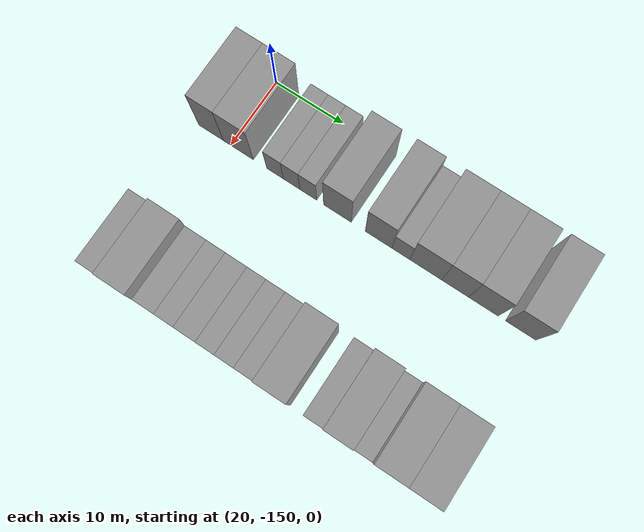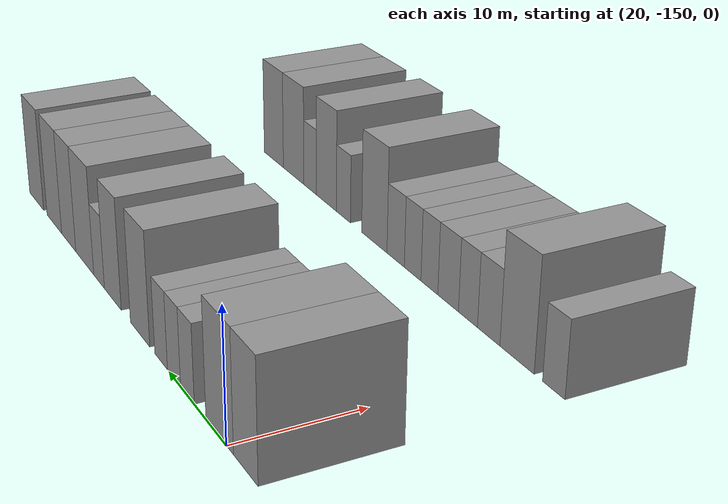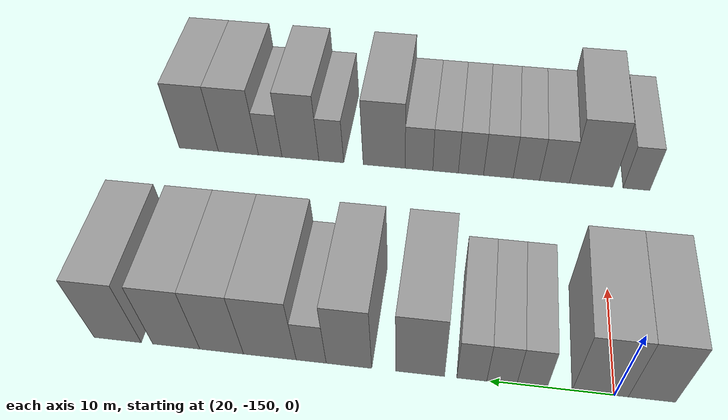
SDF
<sdf version="1.6">
 <world name="default">
  <model name="building_14">
   <static>1</static>
   <pose>25.0000 -152.9464 0 0.000000 0.000000 0.000000</pose>
   <link name="link">
    <pose>0 0 4.50 0 0 0</pose>
    <collision name="collision"><geometry><box><size>10.0000 3.7243 9.0000</size></box></geometry></collision>
    <visual name="visual">
     <cast_shadows>0</cast_shadows>
     <geometry><box><size>10.0000 3.7243 9.0000</size></box></geometry>
     <material>
      <script>
       <uri>model://grey_wall/materials/scripts</uri>
       <uri>model://grey_wall/materials/textures</uri>
       <name>vrc/grey_wall</name>
      </script>
     </material>
    </visual>
   </link>
  </model>
  <model name="building_15">
   <static>1</static>
   <pose>25.0000 -148.8476 0 0.000000 0.000000 0.000000</pose>
   <link name="link">
    <pose>0 0 4.50 0 0 0</pose>
    <collision name="collision"><geometry><box><size>10.0000 4.4733 9.0000</size></box></geometry></collision>
    <visual name="visual">
     <cast_shadows>0</cast_shadows>
     <geometry><box><size>10.0000 4.4733 9.0000</size></box></geometry>
     <material>
      <script>
       <uri>model://grey_wall/materials/scripts</uri>
       <uri>model://grey_wall/materials/textures</uri>
       <name>vrc/grey_wall</name>
      </script>
     </material>
    </visual>
   </link>
  </model>
  <model name="building_16">
   <static>1</static>
   <pose>25.0000 -143.3843 0 0.000000 0.000000 0.000000</pose>
   <link name="link">
    <pose>0 0 3.00 0 0 0</pose>
    <collision name="collision"><geometry><box><size>10.0000 2.4534 6.0000</size></box></geometry></collision>
    <visual name="visual">
     <cast_shadows>0</cast_shadows>
     <geometry><box><size>10.0000 2.4534 6.0000</size></box></geometry>
     <material>
      <script>
       <uri>model://grey_wall/materials/scripts</uri>
       <uri>model://grey_wall/materials/textures</uri>
       <name>vrc/grey_wall</name>
      </script>
     </material>
    </visual>
   </link>
  </model>
  <model name="building_17">
   <static>1</static>
   <pose>25.0000 -140.9417 0 0.000000 0.000000 0.000000</pose>
   <link name="link">
    <pose>0 0 3.00 0 0 0</pose>
    <collision name="collision"><geometry><box><size>10.0000 2.4318 6.0000</size></box></geometry></collision>
    <visual name="visual">
     <cast_shadows>0</cast_shadows>
     <geometry><box><size>10.0000 2.4318 6.0000</size></box></geometry>
     <material>
      <script>
       <uri>model://grey_wall/materials/scripts</uri>
       <uri>model://grey_wall/materials/textures</uri>
       <name>vrc/grey_wall</name>
      </script>
     </material>
    </visual>
   </link>
  </model>
  <model name="building_18">
   <static>1</static>
   <pose>25.0000 -138.5001 0 0.000000 0.000000 0.000000</pose>
   <link name="link">
    <pose>0 0 3.00 0 0 0</pose>
    <collision name="collision"><geometry><box><size>10.0000 2.4512 6.0000</size></box></geometry></collision>
    <visual name="visual">
     <cast_shadows>0</cast_shadows>
     <geometry><box><size>10.0000 2.4512 6.0000</size></box></geometry>
     <material>
      <script>
       <uri>model://grey_wall/materials/scripts</uri>
       <uri>model://grey_wall/materials/textures</uri>
       <name>vrc/grey_wall</name>
      </script>
     </material>
    </visual>
   </link>
  </model>
  <model name="building_19">
   <static>1</static>
   <pose>25.0000 -134.2684 0 0.000000 0.000000 0.000000</pose>
   <link name="link">
    <pose>0 0 4.50 0 0 0</pose>
    <collision name="collision"><geometry><box><size>10.0000 4.0122 9.0000</size></box></geometry></collision>
    <visual name="visual">
     <cast_shadows>0</cast_shadows>
     <geometry><box><size>10.0000 4.0122 9.0000</size></box></geometry>
     <material>
      <script>
       <uri>model://grey_wall/materials/scripts</uri>
       <uri>model://grey_wall/materials/textures</uri>
       <name>vrc/grey_wall</name>
      </script>
     </material>
    </visual>
   </link>
  </model>
  <model name="building_20">
   <static>1</static>
   <pose>25.0000 -128.3569 0 0.000000 0.000000 0.000000</pose>
   <link name="link">
    <pose>0 0 4.50 0 0 0</pose>
    <collision name="collision"><geometry><box><size>10.0000 3.8109 9.0000</size></box></geometry></collision>
    <visual name="visual">
     <cast_shadows>0</cast_shadows>
     <geometry><box><size>10.0000 3.8109 9.0000</size></box></geometry>
     <material>
      <script>
       <uri>model://grey_wall/materials/scripts</uri>
       <uri>model://grey_wall/materials/textures</uri>
       <name>vrc/grey_wall</name>
      </script>
     </material>
    </visual>
   </link>
  </model>
  <model name="building_21">
   <static>1</static>
   <pose>25.0000 -125.1883 0 0.000000 0.000000 0.000000</pose>
   <link name="link">
    <pose>0 0 3.00 0 0 0</pose>
    <collision name="collision"><geometry><box><size>10.0000 2.5262 6.0000</size></box></geometry></collision>
    <visual name="visual">
     <cast_shadows>0</cast_shadows>
     <geometry><box><size>10.0000 2.5262 6.0000</size></box></geometry>
     <material>
      <script>
       <uri>model://grey_wall/materials/scripts</uri>
       <uri>model://grey_wall/materials/textures</uri>
       <name>vrc/grey_wall</name>
      </script>
     </material>
    </visual>
   </link>
  </model>
  <model name="building_22">
   <static>1</static>
   <pose>25.0000 -121.6837 0 0.000000 0.000000 0.000000</pose>
   <link name="link">
    <pose>0 0 4.50 0 0 0</pose>
    <collision name="collision"><geometry><box><size>10.0000 4.4832 9.0000</size></box></geometry></collision>
    <visual name="visual">
     <cast_shadows>0</cast_shadows>
     <geometry><box><size>10.0000 4.4832 9.0000</size></box></geometry>
     <material>
      <script>
       <uri>model://grey_wall/materials/scripts</uri>
       <uri>model://grey_wall/materials/textures</uri>
       <name>vrc/grey_wall</name>
      </script>
     </material>
    </visual>
   </link>
  </model>
  <model name="building_23">
   <static>1</static>
   <pose>25.0000 -117.5654 0 0.000000 0.000000 0.000000</pose>
   <link name="link">
    <pose>0 0 4.50 0 0 0</pose>
    <collision name="collision"><geometry><box><size>10.0000 3.7533 9.0000</size></box></geometry></collision>
    <visual name="visual">
     <cast_shadows>0</cast_shadows>
     <geometry><box><size>10.0000 3.7533 9.0000</size></box></geometry>
     <material>
      <script>
       <uri>model://grey_wall/materials/scripts</uri>
       <uri>model://grey_wall/materials/textures</uri>
       <name>vrc/grey_wall</name>
      </script>
     </material>
    </visual>
   </link>
  </model>
  <model name="building_24">
   <static>1</static>
   <pose>25.0000 -113.6408 0 0.000000 0.000000 0.000000</pose>
   <link name="link">
    <pose>0 0 4.50 0 0 0</pose>
    <collision name="collision"><geometry><box><size>10.0000 4.0959 9.0000</size></box></geometry></collision>
    <visual name="visual">
     <cast_shadows>0</cast_shadows>
     <geometry><box><size>10.0000 4.0959 9.0000</size></box></geometry>
     <material>
      <script>
       <uri>model://grey_wall/materials/scripts</uri>
       <uri>model://grey_wall/materials/textures</uri>
       <name>vrc/grey_wall</name>
      </script>
     </material>
    </visual>
   </link>
  </model>
  <model name="building_25">
   <static>1</static>
   <pose>25.0000 -108.5217 0 0.000000 0.000000 0.000000</pose>
   <link name="link">
    <pose>0 0 4.50 0 0 0</pose>
    <collision name="collision"><geometry><box><size>10.0000 4.1422 9.0000</size></box></geometry></collision>
    <visual name="visual">
     <cast_shadows>0</cast_shadows>
     <geometry><box><size>10.0000 4.1422 9.0000</size></box></geometry>
     <material>
      <script>
       <uri>model://grey_wall/materials/scripts</uri>
       <uri>model://grey_wall/materials/textures</uri>
       <name>vrc/grey_wall</name>
      </script>
     </material>
    </visual>
   </link>
  </model>
  <model name="building_111">
   <static>1</static>
   <pose>47.0000 -153.5315 0 0.000000 0.000000 0.000000</pose>
   <link name="link">
    <pose>0 0 3.00 0 0 0</pose>
    <collision name="collision"><geometry><box><size>10.0000 2.6027 6.0000</size></box></geometry></collision>
    <visual name="visual">
     <cast_shadows>0</cast_shadows>
     <geometry><box><size>10.0000 2.6027 6.0000</size></box></geometry>
     <material>
      <script>
       <uri>model://grey_wall/materials/scripts</uri>
       <uri>model://grey_wall/materials/textures</uri>
       <name>vrc/grey_wall</name>
      </script>
     </material>
    </visual>
   </link>
  </model>
  <model name="building_112">
   <static>1</static>
   <pose>47.0000 -149.0976 0 0.000000 0.000000 0.000000</pose>
   <link name="link">
    <pose>0 0 4.50 0 0 0</pose>
    <collision name="collision"><geometry><box><size>10.0000 4.2650 9.0000</size></box></geometry></collision>
    <visual name="visual">
     <cast_shadows>0</cast_shadows>
     <geometry><box><size>10.0000 4.2650 9.0000</size></box></geometry>
     <material>
      <script>
       <uri>model://grey_wall/materials/scripts</uri>
       <uri>model://grey_wall/materials/textures</uri>
       <name>vrc/grey_wall</name>
      </script>
     </material>
    </visual>
   </link>
  </model>
  <model name="building_113">
   <static>1</static>
   <pose>47.0000 -145.4870 0 0.000000 0.000000 0.000000</pose>
   <link name="link">
    <pose>0 0 3.00 0 0 0</pose>
    <collision name="collision"><geometry><box><size>10.0000 2.9563 6.0000</size></box></geometry></collision>
    <visual name="visual">
     <cast_shadows>0</cast_shadows>
     <geometry><box><size>10.0000 2.9563 6.0000</size></box></geometry>
     <material>
      <script>
       <uri>model://grey_wall/materials/scripts</uri>
       <uri>model://grey_wall/materials/textures</uri>
       <name>vrc/grey_wall</name>
      </script>
     </material>
    </visual>
   </link>
  </model>
  <model name="building_114">
   <static>1</static>
   <pose>47.0000 -142.6968 0 0.000000 0.000000 0.000000</pose>
   <link name="link">
    <pose>0 0 3.00 0 0 0</pose>
    <collision name="collision"><geometry><box><size>10.0000 2.6241 6.0000</size></box></geometry></collision>
    <visual name="visual">
     <cast_shadows>0</cast_shadows>
     <geometry><box><size>10.0000 2.6241 6.0000</size></box></geometry>
     <material>
      <script>
       <uri>model://grey_wall/materials/scripts</uri>
       <uri>model://grey_wall/materials/textures</uri>
       <name>vrc/grey_wall</name>
      </script>
     </material>
    </visual>
   </link>
  </model>
  <model name="building_115">
   <static>1</static>
   <pose>47.0000 -139.9035 0 0.000000 0.000000 0.000000</pose>
   <link name="link">
    <pose>0 0 3.00 0 0 0</pose>
    <collision name="collision"><geometry><box><size>10.0000 2.9624 6.0000</size></box></geometry></collision>
    <visual name="visual">
     <cast_shadows>0</cast_shadows>
     <geometry><box><size>10.0000 2.9624 6.0000</size></box></geometry>
     <material>
      <script>
       <uri>model://grey_wall/materials/scripts</uri>
       <uri>model://grey_wall/materials/textures</uri>
       <name>vrc/grey_wall</name>
      </script>
     </material>
    </visual>
   </link>
  </model>
  <model name="building_116">
   <static>1</static>
   <pose>47.0000 -137.1556 0 0.000000 0.000000 0.000000</pose>
   <link name="link">
    <pose>0 0 3.00 0 0 0</pose>
    <collision name="collision"><geometry><box><size>10.0000 2.5333 6.0000</size></box></geometry></collision>
    <visual name="visual">
     <cast_shadows>0</cast_shadows>
     <geometry><box><size>10.0000 2.5333 6.0000</size></box></geometry>
     <material>
      <script>
       <uri>model://grey_wall/materials/scripts</uri>
       <uri>model://grey_wall/materials/textures</uri>
       <name>vrc/grey_wall</name>
      </script>
     </material>
    </visual>
   </link>
  </model>
  <model name="building_117">
   <static>1</static>
   <pose>47.0000 -134.6008 0 0.000000 0.000000 0.000000</pose>
   <link name="link">
    <pose>0 0 3.00 0 0 0</pose>
    <collision name="collision"><geometry><box><size>10.0000 2.5762 6.0000</size></box></geometry></collision>
    <visual name="visual">
     <cast_shadows>0</cast_shadows>
     <geometry><box><size>10.0000 2.5762 6.0000</size></box></geometry>
     <material>
      <script>
       <uri>model://grey_wall/materials/scripts</uri>
       <uri>model://grey_wall/materials/textures</uri>
       <name>vrc/grey_wall</name>
      </script>
     </material>
    </visual>
   </link>
  </model>
  <model name="building_118">
   <static>1</static>
   <pose>47.0000 -131.9092 0 0.000000 0.000000 0.000000</pose>
   <link name="link">
    <pose>0 0 3.00 0 0 0</pose>
    <collision name="collision"><geometry><box><size>10.0000 2.8072 6.0000</size></box></geometry></collision>
    <visual name="visual">
     <cast_shadows>0</cast_shadows>
     <geometry><box><size>10.0000 2.8072 6.0000</size></box></geometry>
     <material>
      <script>
       <uri>model://grey_wall/materials/scripts</uri>
       <uri>model://grey_wall/materials/textures</uri>
       <name>vrc/grey_wall</name>
      </script>
     </material>
    </visual>
   </link>
  </model>
  <model name="building_119">
   <static>1</static>
   <pose>47.0000 -128.3597 0 0.000000 0.000000 0.000000</pose>
   <link name="link">
    <pose>0 0 4.50 0 0 0</pose>
    <collision name="collision"><geometry><box><size>10.0000 4.2918 9.0000</size></box></geometry></collision>
    <visual name="visual">
     <cast_shadows>0</cast_shadows>
     <geometry><box><size>10.0000 4.2918 9.0000</size></box></geometry>
     <material>
      <script>
       <uri>model://grey_wall/materials/scripts</uri>
       <uri>model://grey_wall/materials/textures</uri>
       <name>vrc/grey_wall</name>
      </script>
     </material>
    </visual>
   </link>
  </model>
  <model name="building_120">
   <static>1</static>
   <pose>47.0000 -122.9304 0 0.000000 0.000000 0.000000</pose>
   <link name="link">
    <pose>0 0 3.00 0 0 0</pose>
    <collision name="collision"><geometry><box><size>10.0000 2.5667 6.0000</size></box></geometry></collision>
    <visual name="visual">
     <cast_shadows>0</cast_shadows>
     <geometry><box><size>10.0000 2.5667 6.0000</size></box></geometry>
     <material>
      <script>
       <uri>model://grey_wall/materials/scripts</uri>
       <uri>model://grey_wall/materials/textures</uri>
       <name>vrc/grey_wall</name>
      </script>
     </material>
    </visual>
   </link>
  </model>
  <model name="building_121">
   <static>1</static>
   <pose>47.0000 -119.7244 0 0.000000 0.000000 0.000000</pose>
   <link name="link">
    <pose>0 0 4.50 0 0 0</pose>
    <collision name="collision"><geometry><box><size>10.0000 3.8454 9.0000</size></box></geometry></collision>
    <visual name="visual">
     <cast_shadows>0</cast_shadows>
     <geometry><box><size>10.0000 3.8454 9.0000</size></box></geometry>
     <material>
      <script>
       <uri>model://grey_wall/materials/scripts</uri>
       <uri>model://grey_wall/materials/textures</uri>
       <name>vrc/grey_wall</name>
      </script>
     </material>
    </visual>
   </link>
  </model>
  <model name="building_122">
   <static>1</static>
   <pose>47.0000 -116.5697 0 0.000000 0.000000 0.000000</pose>
   <link name="link">
    <pose>0 0 3.00 0 0 0</pose>
    <collision name="collision"><geometry><box><size>10.0000 2.4639 6.0000</size></box></geometry></collision>
    <visual name="visual">
     <cast_shadows>0</cast_shadows>
     <geometry><box><size>10.0000 2.4639 6.0000</size></box></geometry>
     <material>
      <script>
       <uri>model://grey_wall/materials/scripts</uri>
       <uri>model://grey_wall/materials/textures</uri>
       <name>vrc/grey_wall</name>
      </script>
     </material>
    </visual>
   </link>
  </model>
  <model name="building_123">
   <static>1</static>
   <pose>47.0000 -113.2220 0 0.000000 0.000000 0.000000</pose>
   <link name="link">
    <pose>0 0 4.50 0 0 0</pose>
    <collision name="collision"><geometry><box><size>10.0000 4.2315 9.0000</size></box></geometry></collision>
    <visual name="visual">
     <cast_shadows>0</cast_shadows>
     <geometry><box><size>10.0000 4.2315 9.0000</size></box></geometry>
     <material>
      <script>
       <uri>model://grey_wall/materials/scripts</uri>
       <uri>model://grey_wall/materials/textures</uri>
       <name>vrc/grey_wall</name>
      </script>
     </material>
    </visual>
   </link>
  </model>
  <model name="building_124">
   <static>1</static>
   <pose>47.0000 -109.0310 0 0.000000 0.000000 0.000000</pose>
   <link name="link">
    <pose>0 0 4.50 0 0 0</pose>
    <collision name="collision"><geometry><box><size>10.0000 4.1504 9.0000</size></box></geometry></collision>
    <visual name="visual">
     <cast_shadows>0</cast_shadows>
     <geometry><box><size>10.0000 4.1504 9.0000</size></box></geometry>
     <material>
      <script>
       <uri>model://grey_wall/materials/scripts</uri>
       <uri>model://grey_wall/materials/textures</uri>
       <name>vrc/grey_wall</name>
      </script>
     </material>
    </visual>
   </link>
  </model>
 </world>
</sdf>
